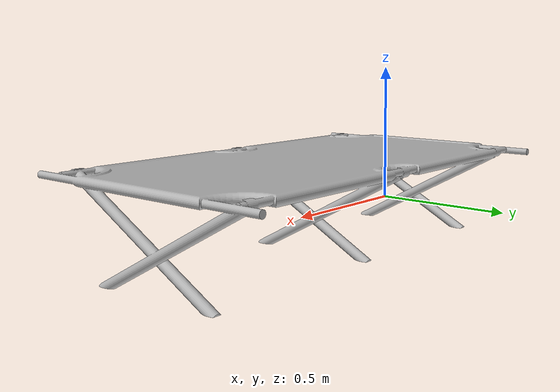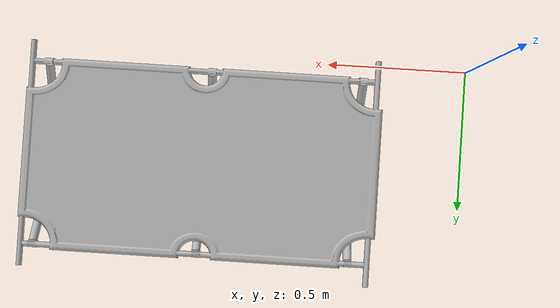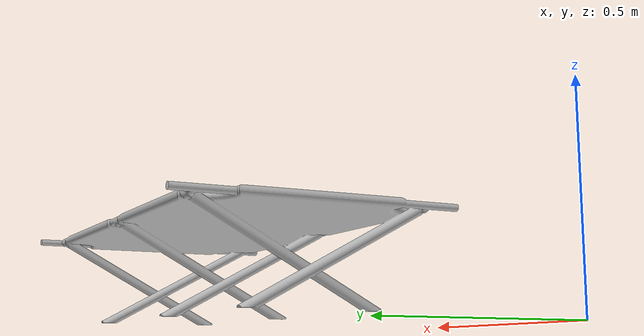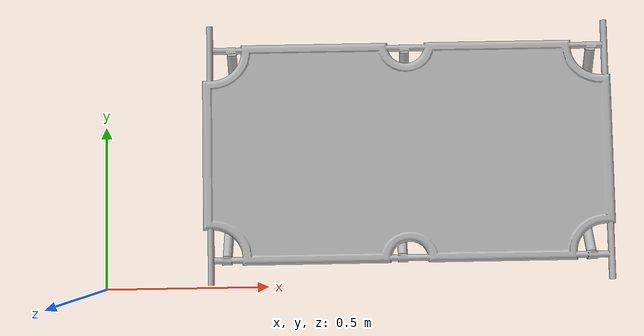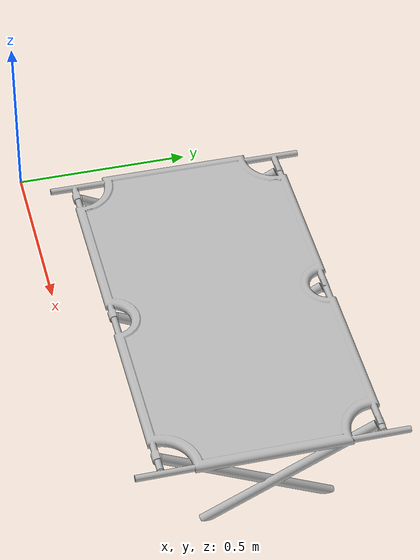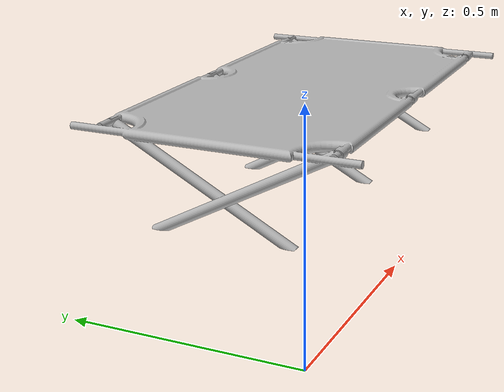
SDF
<?xml version="1.0"?>
<sdf version="1.4">
   <model name="cot">
   <pose>0 0 .10  0 0 0</pose>
   <static>true</static>
   <link name="body">
   <collision name="body">
     <geometry>
       <mesh>
          <uri>model://cot/meshes/cot.stl</uri>
          <scale>.6 .6 .6</scale>
       </mesh>
     </geometry>
   </collision>
   <visual name="visual">
     <geometry>
       <mesh>
          <uri>model://cot/meshes/cot.dae</uri>
          <scale>.6 .6 .6</scale>
       </mesh>
     </geometry>
   </visual>
   </link>
   </model>
</sdf>
